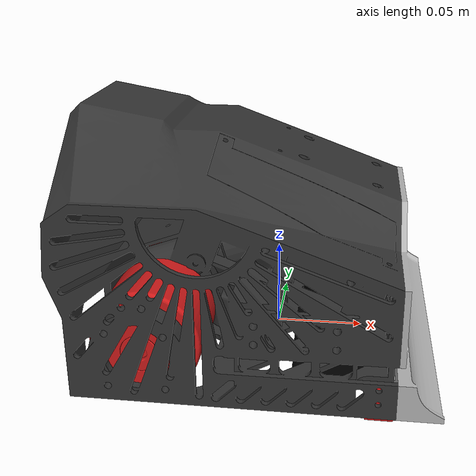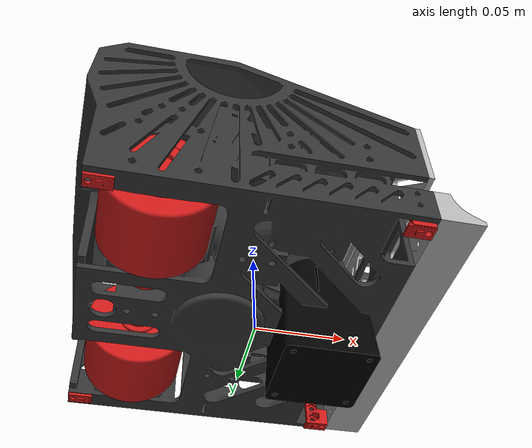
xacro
<?xml version="1.0" ?>
<robot xmlns:xacro="http://www.ros.org/wiki/xacro"
       name="interfearence">

  <xacro:arg name="robotns" default="/"/>

  <link name="base_link"/>

  <gazebo>
    <!-- plugin to allow the robot to interface with ros_control -->
    <plugin name="gazebo_ros_control" filename="libgazebo_ros_control.so">
      <!-- the launch file will replace this with something sensible -->
      <robotNamespace>$(arg robotns)</robotNamespace>
      <robotSimType>gazebo_ros_control/DefaultRobotHWSim</robotSimType>
    </plugin>
    <!-- plugin to simulate the electromagnet -->
    <plugin name="magnet" filename="libmagnet_plugin.so"/>
    <!-- plugins for the edge sensors -->
    <plugin name="front_left_line_sensor_plugin"
            filename="libarena_edge_detection_plugin.so">
        <frameName>/$(arg robotns)/front_left_line_sensor</frameName>
        <topicName>/$(arg robotns)/edge_sensors/front_left</topicName>
        <linkName>front_left_line_sensor</linkName>
    </plugin>
    <plugin name="front_right_line_sensor_plugin"
            filename="libarena_edge_detection_plugin.so">
        <frameName>/$(arg robotns)/front_right_line_sensor</frameName>
        <topicName>/$(arg robotns)/edge_sensors/front_right</topicName>
        <linkName>front_right_line_sensor</linkName>
    </plugin>
    <plugin name="rear_left_line_sensor_plugin"
            filename="libarena_edge_detection_plugin.so">
        <frameName>/$(arg robotns)/rear_left_line_sensor</frameName>
        <topicName>/$(arg robotns)/edge_sensors/rear_left</topicName>
        <linkName>rear_left_line_sensor</linkName>
    </plugin>
    <plugin name="rear_right_line_sensor_plugin"
            filename="libarena_edge_detection_plugin.so">
        <frameName>/$(arg robotns)/rear_right_line_sensor</frameName>
        <topicName>/$(arg robotns)/edge_sensors/rear_right</topicName>
        <linkName>rear_right_line_sensor</linkName>
    </plugin>
    <self_collide>false</self_collide>
  </gazebo>

  <material name="grey">
    <color rgba="0.2 0.2 0.2 1"/>
  </material>

  <material name="light_grey">
    <color rgba="0.7 0.7 0.7 1"/>
  </material>

  <material name="red">
    <color rgba="0.8 0.1 0.1 1"/>
  </material>

  <material name="black">
    <color rgba="0.0 0.0 0.0 1"/>
  </material>

  <link name="base_footprint">
    <inertial>
      <mass value="2.4"/>
      <origin rpy="0 0 0" xyz="0.00178 0.02496 0.04945"/>
      <inertia ixx="0.016" ixy="0.0" ixz="0.0" iyy="0.016" iyz="0.0" izz="0.016"/>
    </inertial>
    <collision name="base_footprint_collision">
      <origin rpy="0 0 0" xyz="0.00178 0.02496 0.04945"/>
      <geometry>
        <mesh filename="$(find interfearence-description)/meshes/CAD/base_link.stl" scale="0.001 0.001 0.001"/>
      </geometry>
    </collision>
    <visual name="base_footprint_visual">
      <origin rpy="0 0 0" xyz="0.00178 0.02496 0.04945"/>
      <geometry>
        <mesh filename="$(find interfearence-description)/meshes/CAD/base_link.stl" scale="0.001 0.001 0.001"/>
      </geometry>
      <material name="grey"/>
    </visual>
  </link>

  <gazebo reference="base_footprint">
    <mu1>0.2</mu1>
    <mu2>0.2</mu2>
    <maxVel>0.0</maxVel>
    <minDepth>0.001</minDepth>
    <material>Gazebo/DarkGrey</material>
  </gazebo>

  <joint name="base_footprint_joint" type="fixed">
    <parent link="base_link"/>
    <child link="base_footprint"/>
      <origin rpy="0 0 1.57" xyz="0 0 0"/>
  </joint>

  <link name="front_left_line_sensor">
    <inertial>
      <mass value="0.0019264925574452472"/>
      <origin rpy="0 0 0" xyz="0 0 0"/>
      <inertia ixx="6.993652466946195e-06" ixy="1.0312316193946486e-05" ixz="-1.0982148189863088e-06" iyy="1.5628527481642678e-05" iyz="7.28180547902703e-07" izz="2.2405591810555344e-05"/>
    </inertial>
    <collision name="front_left_line_sensor_collision">
      <geometry>
        <mesh filename="$(find interfearence-description)/meshes/CAD/front_left_line_sensor.stl" scale="0.001 0.001 0.001"/>
      </geometry>
    </collision>
    <visual name="front_left_line_sensor_visual">
      <geometry>
        <mesh filename="$(find interfearence-description)/meshes/CAD/front_left_line_sensor.stl" scale="0.001 0.001 0.001"/>
      </geometry>
      <material name="red"/>
    </visual>
  </link>

  <gazebo reference="front_left_line_sensor">
    <material>Gazebo/Red</material>
  </gazebo>

  <joint name="front_left_line_sensor_joint" type="prismatic">
    <parent link="base_footprint"/>
    <child link="front_left_line_sensor"/>
    <origin rpy="0 0 0" xyz="0.08972 -0.05966  0.000631"/>
    <axis xyz="0 0 1"/>
    <limit lower="0" upper="0.0001" effort="0" velocity="0"/>
  </joint>

  <link name="front_right_line_sensor">
    <inertial>
      <mass value="0.0019264905571713684"/>
      <origin rpy="0 0 0" xyz="0 0 0"/>
      <inertia ixx="6.993643279974907e-06" ixy="-1.031230419502541e-05" ixz="1.0982122999868543e-06" iyy="1.5628510731568552e-05" iyz="7.281787006486148e-07" izz="2.2405566649128356e-05"/>
    </inertial>
    <collision name="front_right_line_sensor_collision">
      <geometry>
        <mesh filename="$(find interfearence-description)/meshes/CAD/front_right_line_sensor.stl" scale="0.001 0.001 0.001"/>
      </geometry>
    </collision>
    <visual name="front_right_line_sensor_visual">
      <geometry>
        <mesh filename="$(find interfearence-description)/meshes/CAD/front_right_line_sensor.stl" scale="0.001 0.001 0.001"/>
      </geometry>
      <material name="red"/>
    </visual>
  </link>

  <gazebo reference="front_right_line_sensor">
    <material>Gazebo/Red</material>
  </gazebo>

  <joint name="front_right_line_sensor_joint" type="prismatic">
    <parent link="base_footprint"/>
    <child link="front_right_line_sensor"/>
    <origin rpy="0 0 0" xyz="-0.08972 -0.05966  0.000631"/>
    <axis xyz="0 0 1"/>
    <limit lower="0" upper="0.0001" effort="0" velocity="0"/>
  </joint>

  <link name="front_scoop">
    <inertial>
      <mass value="0.3002793462422746"/>
      <origin rpy="0 0 0" xyz="0 0 0"/>
      <inertia ixx="0.0020069153294640834" ixy="-8.742216475555394e-10" ixz="1.1208629100778389e-09" iyy="0.0013842734355365178" iyz="0.00063334546461807" izz="0.002437143510894618"/>
    </inertial>
    <collision name="front_scoop_collision">
      <geometry>
        <mesh filename="$(find interfearence-description)/meshes/CAD/front_scoop.stl" scale="0.001 0.001 0.001"/>
      </geometry>
    </collision>
    <visual name="front_scoop_visual">
      <geometry>
        <mesh filename="$(find interfearence-description)/meshes/CAD/front_scoop.stl" scale="0.001 0.001 0.001"/>
      </geometry>
      <material name="light_grey"/>
    </visual>
  </link>

  <gazebo reference="front_scoop">
    <mu1>0.2</mu1>
    <mu2>0.2</mu2>
    <maxVel>0.0</maxVel>
    <minDepth>0.0005</minDepth>
    <material>Gazebo/Gold</material>
  </gazebo>

  <joint name="front_scoop_joint" type="fixed">
    <parent link="base_footprint"/>
    <child link="front_scoop"/>
    <origin rpy="0 0 0" xyz="0      -0.07125  0.03036"/>
  </joint>

  <link name="left_wheel">
    <inertial>
      <mass value="0.31653412374925943"/>
      <origin rpy="0 0 0" xyz="0 0 0"/>
      <inertia ixx="0.000122" ixy="-0.0" ixz="-0.0" iyy="0.000122" iyz="-0.0" izz="0.000137"/>
    </inertial>
    <collision name="left_wheel_collision">
      <geometry>
        <mesh filename="$(find interfearence-description)/meshes/CAD/left_wheel.stl" scale="0.001 0.001 0.001"/>
      </geometry>
    </collision>
    <visual name="left_wheel_visual">
      <geometry>
        <mesh filename="$(find interfearence-description)/meshes/CAD/left_wheel.stl" scale="0.001 0.001 0.001"/>
      </geometry>
      <material name="red"/>
    </visual>
  </link>

  <gazebo reference="left_wheel">
    <mu1>0.9</mu1>
    <mu2>0.9</mu2>
    <maxVel>0.0</maxVel>
    <minDepth>0.001</minDepth>
    <material>Gazebo/Red</material>
  </gazebo>

  <joint name="left_wheel_joint" type="continuous">
    <parent link="base_footprint"/>
    <child link="left_wheel"/>
    <axis xyz="1 0 0"/>
    <origin rpy="0 0 0" xyz="0.0546  0.06201 0.02389"/>
    <limit effort="2.0"
           velocity="83.776"/>
  </joint>

  <transmission name="left_wheel_transmission">
    <type>transmission_interface/SimpleTransmission</type>
    <joint name="left_wheel_joint">
      <hardwareInterface>hardware_interface/EffortJointInterface</hardwareInterface>
    </joint>
    <actuator name="left_wheel_motor">
      <hardwareInterface>hardware_interface/EffortJointInterface</hardwareInterface>
      <mechanicalReduction>1</mechanicalReduction>
    </actuator>
  </transmission>

  <link name="right_wheel">
    <inertial>
      <mass value="0.3165346352615723"/>
      <origin rpy="0 0 0" xyz="0 0 0"/>
      <inertia ixx="0.000122" ixy="-0.0" ixz="-0.0" iyy="0.000122" iyz="-0.0" izz="0.000137"/>
    </inertial>
    <collision name="right_wheel_collision">
      <geometry>
        <mesh filename="$(find interfearence-description)/meshes/CAD/right_wheel.stl" scale="0.001 0.001 0.001"/>
      </geometry>
    </collision>
    <visual name="right_wheel_visual">
      <geometry>
        <mesh filename="$(find interfearence-description)/meshes/CAD/right_wheel.stl" scale="0.001 0.001 0.001"/>
      </geometry>
      <material name="red"/>
    </visual>
  </link>

  <gazebo reference="right_wheel">
    <mu1>0.9</mu1>
    <mu2>0.9</mu2>
    <maxVel>0.0</maxVel>
    <minDepth>0.001</minDepth>
    <material>Gazebo/Red</material>
  </gazebo>

  <joint name="right_wheel_joint" type="continuous">
    <parent link="base_footprint"/>
    <child link="right_wheel"/>
    <axis xyz="1 0 0"/>
    <origin rpy="0 0 0" xyz="-0.0546   0.062    0.02389"/>
    <limit effort="2.0"
           velocity="83.776"/>
  </joint>

  <transmission name="right_wheel_transmission">
    <type>transmission_interface/SimpleTransmission</type>
    <joint name="right_wheel_joint">
      <hardwareInterface>hardware_interface/EffortJointInterface</hardwareInterface>
    </joint>
    <actuator name="right_wheel_motor">
      <hardwareInterface>hardware_interface/EffortJointInterface</hardwareInterface>
      <mechanicalReduction>1</mechanicalReduction>
    </actuator>
  </transmission>

  <link name="hokuyo">
    <inertial>
      <mass value="0.12165899018953562"/>
      <origin rpy="0 0 0" xyz="0 0 0"/>
      <inertia ixx="0.0005465720316521868" ixy="-5.224604443057849e-07" ixz="8.074887463142405e-07" iyy="0.0003984755097155271" iyz="0.00022241005016257183" izz="0.00018762073734616868"/>
    </inertial>
    <collision name="hokuyo_collision">
      <origin xyz="0 0 0.025"/>
      <geometry>
        <mesh filename="$(find interfearence-description)/meshes/CAD/hokuyo.stl" scale="0.001 0.001 0.001"/>
      </geometry>
    </collision>
    <visual name="hokuyo_visual">
      <origin xyz="0 0 0.025"/>
      <geometry>
        <mesh filename="$(find interfearence-description)/meshes/CAD/hokuyo.stl" scale="0.001 0.001 0.001"/>
      </geometry>
      <material name="black"/>
    </visual>
  </link>

  <gazebo reference="hokuyo">
    <sensor type="gpu_ray" name="hokuyo_sensor">
      <pose>0 0 0 0 0 0</pose>
      <visualize>true</visualize>
      <always_on>1</always_on>
      <update_rate>30</update_rate>
      <ray>
        <scan>
          <horizontal>
            <samples>640</samples>
            <resolution>1</resolution>
            <min_angle>-2.0944</min_angle>
            <max_angle>2.0944</max_angle>
          </horizontal>
        </scan>
        <range>
          <min>0.08</min>
          <max>2</max>
          <resolution>0.01</resolution>
        </range>
        <noise>
          <type>gaussian</type>
          <mean>0.0</mean>
          <stddev>0.01</stddev>
        </noise>
      </ray>
      <plugin name="laser"
              filename="libgazebo_ros_gpu_laser.so">
        <topicName>laser_scan</topicName>
        <frameName>hokuyo</frameName>
      </plugin>
    </sensor>
    <material>Gazebo/Black</material>
  </gazebo>

  <joint name="hokuyo_joint" type="fixed">
    <parent link="base_footprint"/>
    <child link="hokuyo"/>
    <origin rpy="3.14 0.0 -1.57" xyz="-8.000e-05 -3.485e-02  2.744e-02"/>
  </joint>

  <link name="rear_right_line_sensor">
    <inertial>
      <mass value="0.0012857111617293646"/>
      <origin rpy="0 0 0" xyz="0 0 0"/>
      <inertia ixx="1.0390090598296027e-05" ixy="1.0306058746383977e-05" ixz="1.3290472306358516e-08" iyy="1.0248317234475216e-05" iyz="-1.3413016075006853e-08" izz="2.063758324264526e-05"/>
    </inertial>
    <collision name="rear_right_line_sensor_collision">
      <geometry>
        <mesh filename="$(find interfearence-description)/meshes/CAD/rear_right_line_sensor.stl" scale="0.001 0.001 0.001"/>
      </geometry>
    </collision>
    <visual name="rear_right_line_sensor_visual">
      <geometry>
        <mesh filename="$(find interfearence-description)/meshes/CAD/rear_right_line_sensor.stl" scale="0.001 0.001 0.001"/>
      </geometry>
      <material name="red"/>
    </visual>
  </link>

  <gazebo reference="rear_right_line_sensor">
    <material>Gazebo/Red</material>
  </gazebo>

  <joint name="rear_right_line_sensor_joint" type="prismatic">
    <parent link="base_footprint"/>
    <child link="rear_right_line_sensor"/>
    <origin rpy="0 0 0" xyz="-0.08925  0.08981  0.00011"/>
    <axis xyz="0 0 1"/>
    <limit lower="0" upper="0.0001" effort="0" velocity="0"/>
  </joint>

  <link name="rear_left_line_sensor">
    <inertial>
      <mass value="0.0012857111617293644"/>
      <origin rpy="0 0 0" xyz="0 0 0"/>
      <inertia ixx="1.0390090598296025e-05" ixy="-1.0306058746383974e-05" ixz="-1.3290472306358501e-08" iyy="1.0248317234475215e-05" iyz="-1.3413016075006833e-08" izz="2.063758324264526e-05"/>
    </inertial>
    <collision name="rear_left_line_sensor_collision">
      <geometry>
        <mesh filename="$(find interfearence-description)/meshes/CAD/rear_left_line_sensor.stl" scale="0.001 0.001 0.001"/>
      </geometry>
    </collision>
    <visual name="rear_left_line_sensor_visual">
      <geometry>
        <mesh filename="$(find interfearence-description)/meshes/CAD/rear_left_line_sensor.stl" scale="0.001 0.001 0.001"/>
      </geometry>
      <material name="red"/>
    </visual>
  </link>

  <gazebo reference="rear_left_line_sensor">
    <material>Gazebo/Red</material>
  </gazebo>

  <joint name="rear_left_line_sensor_joint" type="prismatic">
    <parent link="base_footprint"/>
    <child link="rear_left_line_sensor"/>
    <origin rpy="0 0 0" xyz="0.08925 0.08981 0.00011"/>
    <axis xyz="0 0 1"/>
    <limit lower="0" upper="0.0001" effort="0" velocity="0"/>
  </joint>

</robot>
